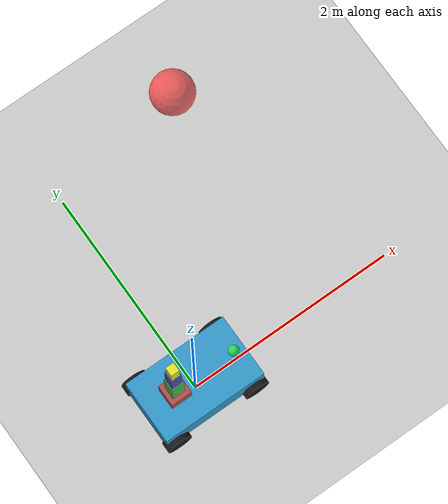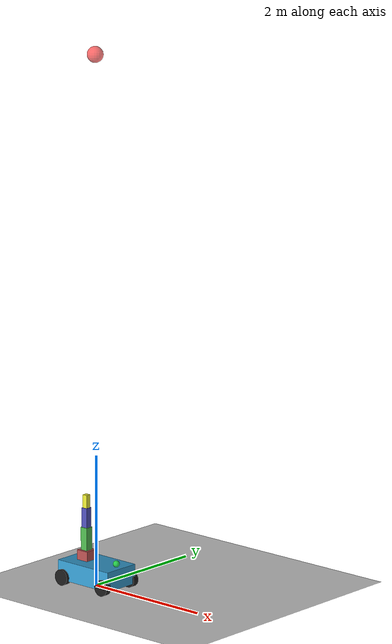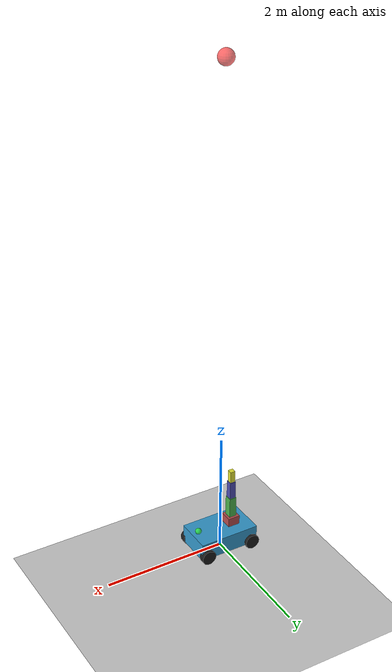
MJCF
<mujoco>
    <option timestep="0.001" integrator="RK4"/>

    <default>
        <geom friction="1 0.1 0.1"/>
    </default>

    <worldbody>
        <light diffuse=".5 .5 .5" pos="0 0 5" dir="0 0 -1" castshadow="true"/>

        <!-- Ground -->
        <geom type="plane" size="5 5 0.1" rgba="0.8 0.8 0.8 1" friction="1 0.1 0.1"/>

        <!-- Top-down camera anchor (world fixed) -->
        <body name="topdown_cam" pos="0 0 8">
            <camera name="topdown" euler="0 0 0" fovy="45"/>
            <geom type="sphere" size="0.12" rgba="1 0.2 0.2 0.7" contype="0" conaffinity="0"/>
        </body>

        <!-- Car Body -->
        <body name="car" pos="0 0 0.22">
            <!-- First-person camera on car -->
            <camera name="firstperson" pos="0.9 0 0.2" euler="0 0 0" fovy="110"/>
            <geom type="sphere" pos="0.4 0 0.2" size="0.05" rgba="0.2 1 0.2 0.7" contype="0" conaffinity="0"/>

            <!-- Car chassis (X=long, Y=wide, Z=tall) -->
            <geom type="box" size="0.5 0.3 0.15" rgba="0.2 0.6 0.8 1" mass="10"/>

            <!-- Wheels - hinge joints for differential drive -->
            <body name="wheel_fl" pos="0.4 0.3 -0.1">
                <joint name="wheel_fl_joint" type="hinge" axis="0 1 0" range="-100 100"/>
                <geom type="cylinder" size="0.12 0.05" fromto="0 -0.05 0 0 0.05 0" rgba="0.1 0.1 0.1 1" mass="1"/>
            </body>
            <body name="wheel_fr" pos="0.4 -0.3 -0.1">
                <joint name="wheel_fr_joint" type="hinge" axis="0 1 0" range="-100 100"/>
                <geom type="cylinder" size="0.12 0.05" fromto="0 -0.05 0 0 0.05 0" rgba="0.1 0.1 0.1 1" mass="1"/>
            </body>
            <body name="wheel_rl" pos="-0.4 0.3 -0.1">
                <joint name="wheel_rl_joint" type="hinge" axis="0 1 0" range="-100 100"/>
                <geom type="cylinder" size="0.12 0.05" fromto="0 -0.05 0 0 0.05 0" rgba="0.1 0.1 0.1 1" mass="1"/>
            </body>
            <body name="wheel_rr" pos="-0.4 -0.3 -0.1">
                <joint name="wheel_rr_joint" type="hinge" axis="0 1 0" range="-100 100"/>
                <geom type="cylinder" size="0.12 0.05" fromto="0 -0.05 0 0 0.05 0" rgba="0.1 0.1 0.1 1" mass="1"/>
            </body>

            <!-- Arm base mount -->
            <body name="arm_base" pos="-0.2 0 0.15">
                <!-- Arm joint 1 - base rotation (yaw) -->
                <joint name="arm_yaw" type="hinge" axis="0 0 1" range="-3.14 3.14"/>
                <geom type="box" size="0.1 0.1 0.15" rgba="0.7 0.3 0.3 1" mass="2"/>

                <!-- Arm segment 1 -->
                <body name="arm_link1" pos="0 0 0.2">
                    <joint name="arm_pitch" type="hinge" axis="0 1 0" range="-1.57 1.57"/>
                    <geom type="box" size="0.06 0.06 0.3" rgba="0.3 0.7 0.3 1" mass="1"/>

                    <!-- Arm segment 2 -->
                    <body name="arm_link2" pos="0 0 0.35">
                        <joint name="arm_roll" type="hinge" axis="1 0 0" range="-1.57 1.57"/>
                        <geom type="box" size="0.05 0.05 0.25" rgba="0.3 0.3 0.7 1" mass="0.8"/>

                        <!-- Arm segment 3 - wrist -->
                        <body name="arm_wrist" pos="0 0 0.3">
                            <joint name="arm_wrist" type="ball"/>
                            <geom type="box" size="0.04 0.04 0.15" rgba="0.9 0.9 0.2 1" mass="0.3"/>
                        </body>
                    </body>
                </body>
            </body>
        </body>
    </worldbody>

    <actuator>
        <!-- Arm actuators -->
        <motor joint="arm_yaw" name="motor_yaw" gear="50" ctrllimited="true" ctrlrange="-10 10"/>
        <motor joint="arm_pitch" name="motor_pitch" gear="50" ctrllimited="true" ctrlrange="-10 10"/>
        <motor joint="arm_roll" name="motor_roll" gear="30" ctrllimited="true" ctrlrange="-10 10"/>
        <!-- Wheel actuators for differential drive -->
        <motor joint="wheel_fl_joint" name="motor_wheel_fl" gear="1" ctrllimited="true" ctrlrange="-10 10"/>
        <motor joint="wheel_fr_joint" name="motor_wheel_fr" gear="1" ctrllimited="true" ctrlrange="-10 10"/>
        <motor joint="wheel_rl_joint" name="motor_wheel_rl" gear="1" ctrllimited="true" ctrlrange="-10 10"/>
        <motor joint="wheel_rr_joint" name="motor_wheel_rr" gear="1" ctrllimited="true" ctrlrange="-10 10"/>
    </actuator>
</mujoco>
